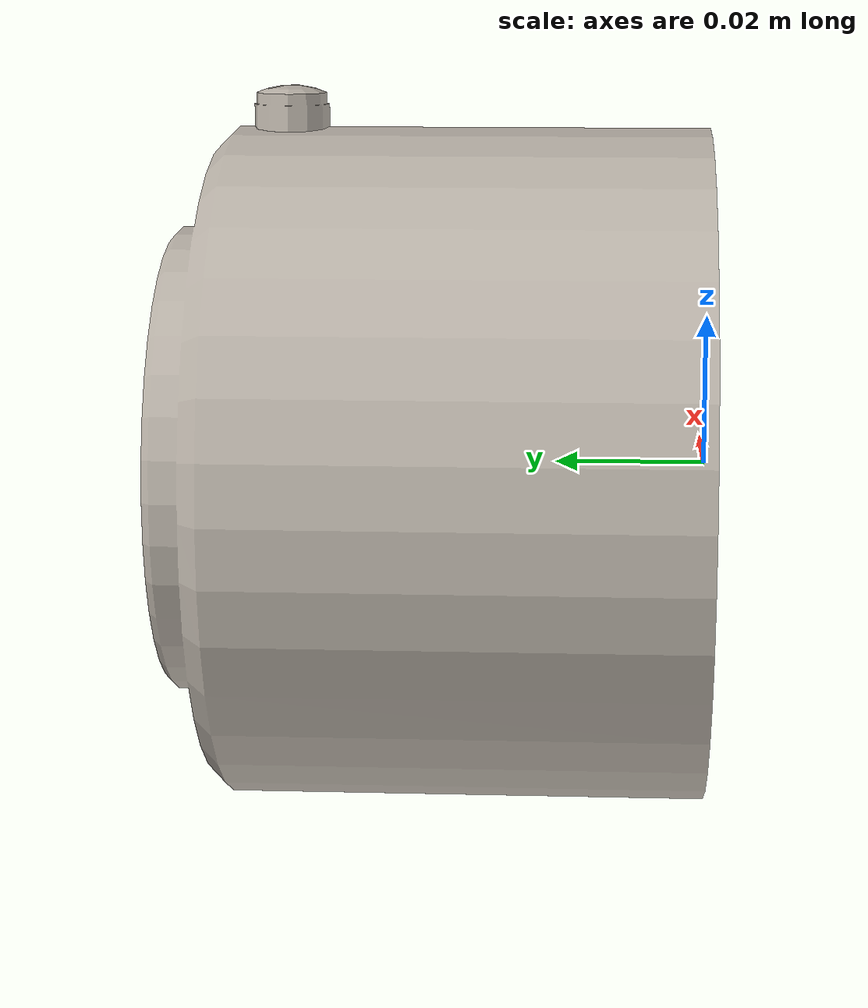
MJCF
<mujoco model="wrist3">
  <default>
    <default class="visual">
      <geom group="2" type="mesh" contype="0" conaffinity="0"/>
    </default>
    <default class="collision">
      <geom group="3" type="mesh"/>
    </default>
  </default>
  <asset>
    <texture type="2d" name="UR15_DIFF_8bit_2K" file="UR15_DIFF_8bit_2K.png"/>
    <material name="Metal_Alu_Brushed_002_COLOR_0.001" texture="UR15_DIFF_8bit_2K" specular="0.0" shininess="0.25"/>
    <mesh file="wrist3.obj"/>
  </asset>
  <worldbody>
    <body name="wrist3">
      <geom material="Metal_Alu_Brushed_002_COLOR_0.001" mesh="wrist3" class="visual"/>
      <geom mesh="wrist3" class="collision"/>
    </body>
  </worldbody>
</mujoco>
